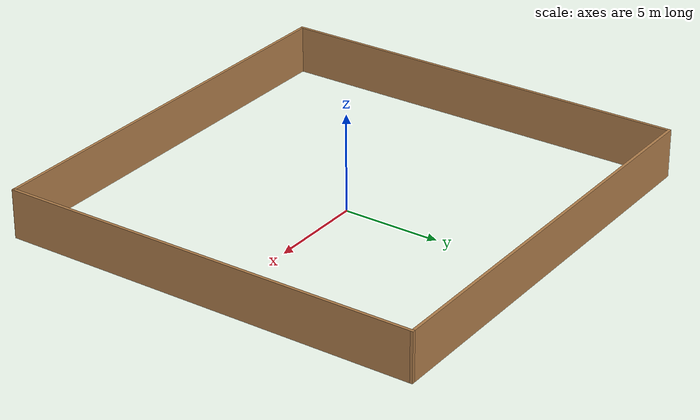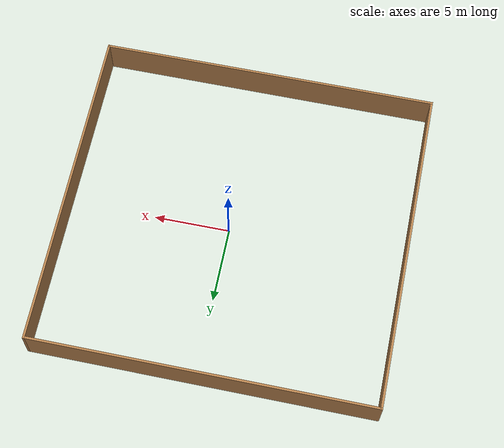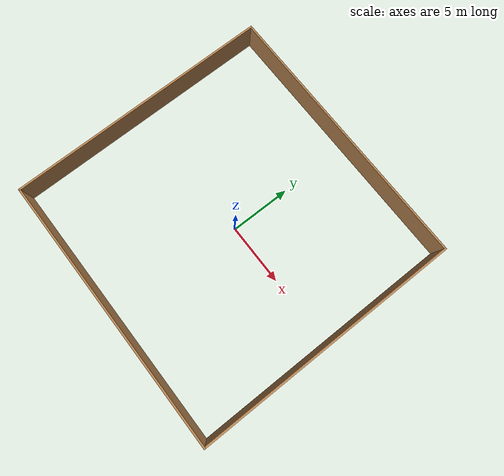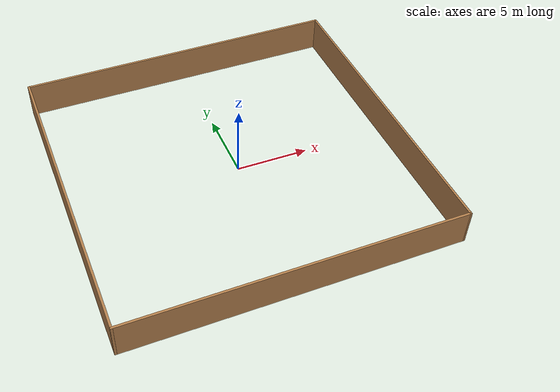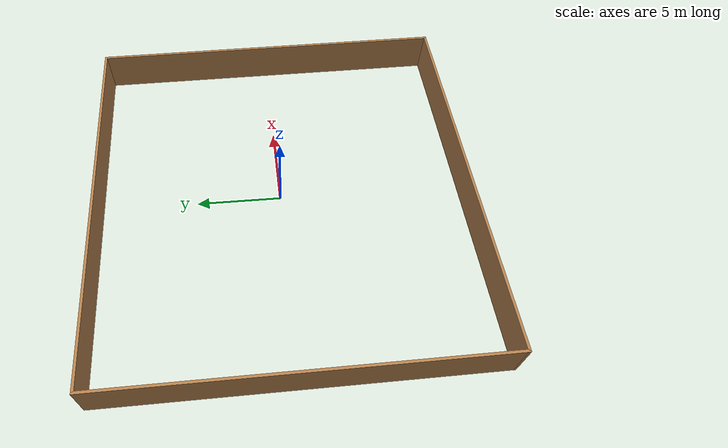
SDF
<sdf version="1.5">
 <world name="default">
  <include><uri>model://sun</uri></include>
  <include><uri>model://free_rectangle</uri></include>
  <scene><sky><clouds><speed>50</speed></clouds></sky><ambient>0 0 0 1.0</ambient><shadows>0</shadows></scene>
 </world>
</sdf>

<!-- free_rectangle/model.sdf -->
<sdf version='1.7'>
  <model name='free_rectangle'>
    <pose>-0.480521 -0.130012 0 0 -0 0</pose>
    <link name='Wall_23'>
      <collision name='Wall_23_Collision'>
        <geometry>
          <box>
            <size>22.5 0.15 2.5</size>
          </box>
        </geometry>
        <pose>0 0 1.25 0 -0 0</pose>
      </collision>
      <visual name='Wall_23_Visual'>
        <pose>0 0 1.25 0 -0 0</pose>
        <geometry>
          <box>
            <size>22.5 0.15 2.5</size>
          </box>
        </geometry>
        <material>
          <script>
            <uri>file://media/materials/scripts/gazebo.material</uri>
            <name>Gazebo/Wood</name>
          </script>
          <ambient>1 1 1 1</ambient>
        </material>
        <meta>
          <layer>0</layer>
        </meta>
      </visual>
      <pose>0 -10.8 0 0 -0 0</pose>
    </link>
    <link name='Wall_24'>
      <collision name='Wall_24_Collision'>
        <geometry>
          <box>
            <size>21.75 0.15 2.5</size>
          </box>
        </geometry>
        <pose>0 0 1.25 0 -0 0</pose>
      </collision>
      <visual name='Wall_24_Visual'>
        <pose>0 0 1.25 0 -0 0</pose>
        <geometry>
          <box>
            <size>21.75 0.15 2.5</size>
          </box>
        </geometry>
        <material>
          <script>
            <uri>file://media/materials/scripts/gazebo.material</uri>
            <name>Gazebo/Wood</name>
          </script>
          <ambient>1 1 1 1</ambient>
        </material>
        <meta>
          <layer>0</layer>
        </meta>
      </visual>
      <pose>11.175 -0 0 0 -0 1.5708</pose>
    </link>
    <link name='Wall_25'>
      <collision name='Wall_25_Collision'>
        <geometry>
          <box>
            <size>22.5 0.15 2.5</size>
          </box>
        </geometry>
        <pose>0 0 1.25 0 -0 0</pose>
      </collision>
      <visual name='Wall_25_Visual'>
        <pose>0 0 1.25 0 -0 0</pose>
        <geometry>
          <box>
            <size>22.5 0.15 2.5</size>
          </box>
        </geometry>
        <material>
          <script>
            <uri>file://media/materials/scripts/gazebo.material</uri>
            <name>Gazebo/Wood</name>
          </script>
          <ambient>1 1 1 1</ambient>
        </material>
        <meta>
          <layer>0</layer>
        </meta>
      </visual>
      <pose>0 10.8 0 0 -0 3.14159</pose>
    </link>
    <link name='Wall_28'>
      <collision name='Wall_28_Collision'>
        <geometry>
          <box>
            <size>21.75 0.15 2.5</size>
          </box>
        </geometry>
        <pose>0 0 1.25 0 -0 0</pose>
      </collision>
      <visual name='Wall_28_Visual'>
        <pose>0 0 1.25 0 -0 0</pose>
        <geometry>
          <box>
            <size>21.75 0.15 2.5</size>
          </box>
        </geometry>
        <material>
          <script>
            <uri>file://media/materials/scripts/gazebo.material</uri>
            <name>Gazebo/Wood</name>
          </script>
          <ambient>1 1 1 1</ambient>
        </material>
        <meta>
          <layer>0</layer>
        </meta>
      </visual>
      <pose>-11.175 -0 0 0 -0 1.5708</pose>
    </link>
    <static>1</static>
  </model>
</sdf>
